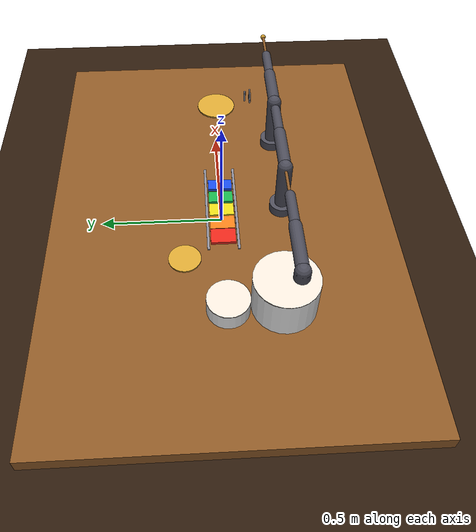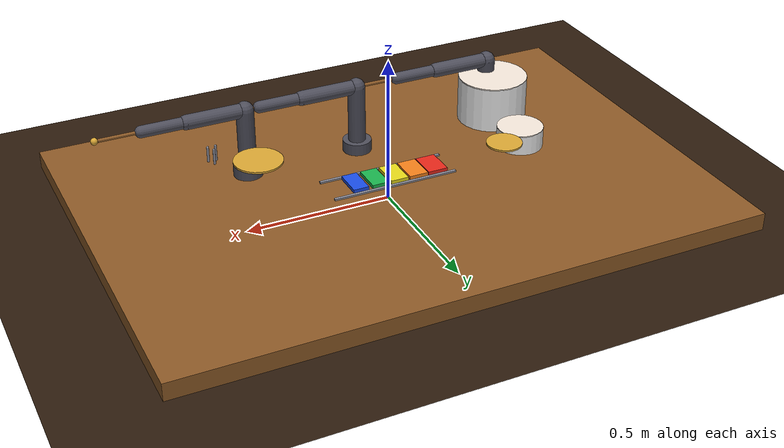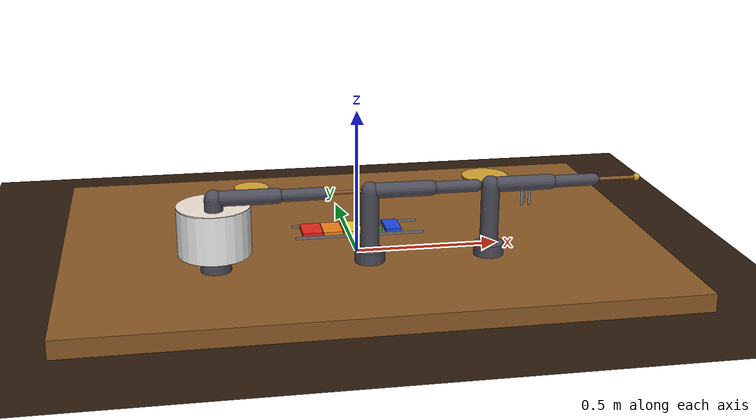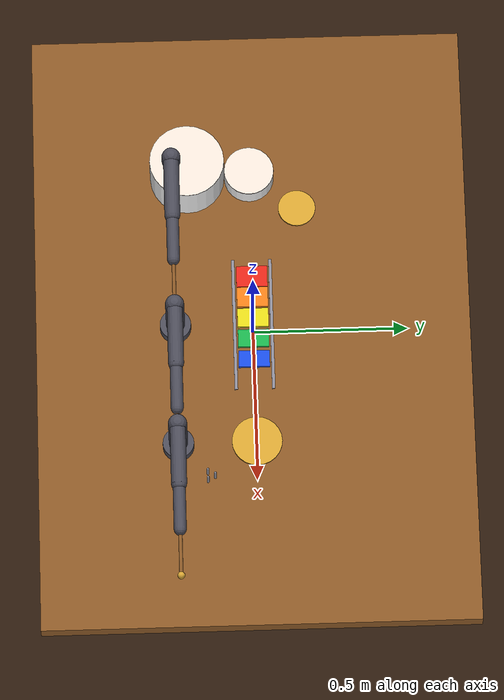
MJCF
<mujoco model="robot_orchestra_v2">
  <compiler angle="radian" autolimits="true"/>
  <option timestep="0.001" gravity="0 0 -9.81"/>
  <visual><global offwidth="1920" offheight="1088"/></visual>

  <default>
    <joint armature="0.01" damping="1.0"/>
    <geom condim="4" friction="0.5 0.005 0.0001"/>
  </default>

  <asset>
    <texture name="stage_tex" type="2d" builtin="checker" rgb1="0.2 0.12 0.06" rgb2="0.15 0.09 0.04" width="512" height="512"/>
    <material name="stage" texture="stage_tex" texrepeat="3 3" reflectance="0.15"/>
    <material name="metal" rgba="0.55 0.55 0.6 1" specular="0.5" shininess="0.5"/>
    <material name="brass" rgba="0.85 0.65 0.2 1" specular="0.7" shininess="0.7"/>
    <material name="wood" rgba="0.55 0.35 0.15 1"/>
    <material name="skin" rgba="0.95 0.9 0.85 1"/>
    <material name="red" rgba="0.9 0.15 0.1 1"/>
    <material name="orange" rgba="0.95 0.5 0.1 1"/>
    <material name="yellow" rgba="0.9 0.85 0.1 1"/>
    <material name="green" rgba="0.1 0.7 0.3 1"/>
    <material name="blue" rgba="0.1 0.3 0.9 1"/>
    <material name="white" rgba="0.95 0.95 0.95 1"/>
    <material name="arm_color" rgba="0.3 0.3 0.35 1" specular="0.4" shininess="0.4"/>
  </asset>

  <worldbody>
    <geom name="floor" type="plane" size="3 3 0.1" material="stage"/>
    <light directional="true" diffuse="0.9 0.85 0.8" pos="0 0 5" dir="0 0 -1"/>
    <light directional="true" diffuse="0.5 0.4 0.3" pos="2 2 4" dir="-1 -1 -1"/>

    <!-- 舞台 -->
    <body name="stage_body" pos="0 0 0.03">
      <geom type="box" size="1.0 0.7 0.03" material="wood" mass="50"/>
    </body>

    <!-- ===== 鼓组 (固定) ===== -->
    <body name="snare" pos="-0.5 0.0 0.12" mocap="true">
      <geom type="cylinder" size="0.08 0.035" material="white" mass="1.5"/>
      <geom type="cylinder" size="0.08 0.002" pos="0 0 0.035" material="skin" solref="0.001 1"/>
    </body>
    <body name="kick" pos="-0.5 -0.2 0.18" mocap="true">
      <geom type="cylinder" size="0.12 0.08" material="white" mass="2"/>
      <geom type="cylinder" size="0.12 0.002" pos="0 0 0.08" material="skin" solref="0.001 1"/>
    </body>
    <body name="hihat" pos="-0.35 0.15 0.2" mocap="true">
      <geom type="cylinder" size="0.06 0.003" material="brass" mass="0.3"/>
    </body>

    <!-- ===== 木琴 (固定) ===== -->
    <body name="xylo_base" pos="0.0 0.0 0.08" mocap="true">
      <geom type="box" size="0.22 0.005 0.003" pos="0 0.06 0" material="metal"/>
      <geom type="box" size="0.22 0.005 0.003" pos="0 -0.06 0" material="metal"/>
      <geom type="box" size="0.035 0.05 0.006" pos="-0.16 0 0.006" material="red" solref="0.001 1"/>
      <geom type="box" size="0.033 0.05 0.006" pos="-0.09 0 0.006" material="orange" solref="0.001 1"/>
      <geom type="box" size="0.031 0.05 0.006" pos="-0.02 0 0.006" material="yellow" solref="0.001 1"/>
      <geom type="box" size="0.029 0.05 0.006" pos="0.05 0 0.006" material="green" solref="0.001 1"/>
      <geom type="box" size="0.027 0.05 0.006" pos="0.12 0 0.006" material="blue" solref="0.001 1"/>
    </body>

    <!-- ===== 镲片+三角铁 (固定) ===== -->
    <body name="cymbal" pos="0.45 0.0 0.25" mocap="true">
      <geom type="cylinder" size="0.08 0.003" material="brass" mass="0.2"/>
    </body>
    <body name="triangle_inst" pos="0.55 -0.15 0.22" mocap="true">
      <geom type="capsule" size="0.004 0.025" pos="0 0.015 0" material="metal"/>
      <geom type="capsule" size="0.004 0.025" pos="0.013 -0.008 0" material="metal" euler="0 0 1.047"/>
      <geom type="capsule" size="0.004 0.025" pos="-0.013 -0.008 0" material="metal" euler="0 0 -1.047"/>
    </body>

    <!-- ===== 机械臂1: 鼓手 ===== -->
    <body name="d_base" pos="-0.5 -0.25 0.06">
      <geom type="cylinder" size="0.05 0.04" material="arm_color" mass="8"/>
      <body name="d_link1" pos="0 0 0.04">
        <joint name="d_j1" type="hinge" axis="0 0 1" range="-2 2" damping="15"/>
        <geom type="capsule" fromto="0 0 0 0 0 0.2" size="0.03" material="arm_color"/>
        <body name="d_link2" pos="0 0 0.2">
          <joint name="d_j2" type="hinge" axis="0 1 0" range="-1.5 0.5" damping="15"/>
          <geom type="capsule" fromto="0 0 0 0.2 0 0" size="0.025" material="arm_color"/>
          <body name="d_link3" pos="0.2 0 0">
            <joint name="d_j3" type="hinge" axis="0 1 0" range="-1.0 1.0" damping="10"/>
            <geom type="capsule" fromto="0 0 0 0.15 0 0" size="0.02" material="arm_color"/>
            <body name="d_stick" pos="0.15 0 0">
              <geom type="capsule" fromto="0 0 0 0.18 0 0" size="0.006" material="wood" mass="0.03"/>
              <site name="stick_tip" pos="0.18 0 0" size="0.008"/>
            </body>
          </body>
        </body>
      </body>
    </body>

    <!-- ===== 机械臂2: 木琴手 ===== -->
    <body name="x_base" pos="0.0 -0.25 0.06">
      <geom type="cylinder" size="0.05 0.04" material="arm_color" mass="8"/>
      <body name="x_link1" pos="0 0 0.04">
        <joint name="x_j1" type="hinge" axis="0 0 1" range="-2 2" damping="15"/>
        <geom type="capsule" fromto="0 0 0 0 0 0.2" size="0.03" material="arm_color"/>
        <body name="x_link2" pos="0 0 0.2">
          <joint name="x_j2" type="hinge" axis="0 1 0" range="-1.5 0.5" damping="15"/>
          <geom type="capsule" fromto="0 0 0 0.2 0 0" size="0.025" material="arm_color"/>
          <body name="x_link3" pos="0.2 0 0">
            <joint name="x_j3" type="hinge" axis="0 1 0" range="-1.0 1.0" damping="10"/>
            <geom type="capsule" fromto="0 0 0 0.15 0 0" size="0.02" material="arm_color"/>
            <body name="x_mallet" pos="0.15 0 0">
              <geom type="capsule" fromto="0 0 0 0.15 0 0" size="0.006" material="wood" mass="0.03"/>
              <geom type="sphere" size="0.015" pos="0.15 0 0" material="red" mass="0.01"/>
              <site name="mallet_tip" pos="0.15 0 0" size="0.015"/>
            </body>
          </body>
        </body>
      </body>
    </body>

    <!-- ===== 机械臂3: 打击乐手 ===== -->
    <body name="p_base" pos="0.4 -0.25 0.06">
      <geom type="cylinder" size="0.05 0.04" material="arm_color" mass="8"/>
      <body name="p_link1" pos="0 0 0.04">
        <joint name="p_j1" type="hinge" axis="0 0 1" range="-2 2" damping="15"/>
        <geom type="capsule" fromto="0 0 0 0 0 0.2" size="0.03" material="arm_color"/>
        <body name="p_link2" pos="0 0 0.2">
          <joint name="p_j2" type="hinge" axis="0 1 0" range="-1.5 0.5" damping="15"/>
          <geom type="capsule" fromto="0 0 0 0.2 0 0" size="0.025" material="arm_color"/>
          <body name="p_link3" pos="0.2 0 0">
            <joint name="p_j3" type="hinge" axis="0 1 0" range="-1.0 1.0" damping="10"/>
            <geom type="capsule" fromto="0 0 0 0.15 0 0" size="0.02" material="arm_color"/>
            <body name="p_beater" pos="0.15 0 0">
              <geom type="capsule" fromto="0 0 0 0.15 0 0" size="0.006" material="wood" mass="0.03"/>
              <geom type="sphere" size="0.012" pos="0.15 0 0" material="brass" mass="0.01"/>
              <site name="beater_tip" pos="0.15 0 0" size="0.012"/>
            </body>
          </body>
        </body>
      </body>
    </body>

    <!-- 相机 -->
    <camera name="overview" pos="0 -1.8 1.0" xyaxes="1 0 0 0 0.5 0.85" fovy="55"/>
    <camera name="drummer_cam" pos="-0.6 -1.0 0.7" xyaxes="0.8 -0.6 0 -0.3 -0.4 0.9" fovy="45"/>
    <camera name="xylo_cam" pos="0 -1.0 0.7" xyaxes="1 0 0 0 0.3 0.95" fovy="40"/>
    <camera name="perc_cam" pos="0.6 -1.0 0.7" xyaxes="-0.8 -0.6 0 0.3 -0.4 0.9" fovy="45"/>
  </worldbody>

  <actuator>
    <motor name="d_a1" joint="d_j1" ctrlrange="-50 50"/>
    <motor name="d_a2" joint="d_j2" ctrlrange="-50 50"/>
    <motor name="d_a3" joint="d_j3" ctrlrange="-50 50"/>
    <motor name="x_a1" joint="x_j1" ctrlrange="-50 50"/>
    <motor name="x_a2" joint="x_j2" ctrlrange="-50 50"/>
    <motor name="x_a3" joint="x_j3" ctrlrange="-50 50"/>
    <motor name="p_a1" joint="p_j1" ctrlrange="-50 50"/>
    <motor name="p_a2" joint="p_j2" ctrlrange="-50 50"/>
    <motor name="p_a3" joint="p_j3" ctrlrange="-50 50"/>
  </actuator>

  <sensor>
    <touch name="drum_hit" site="stick_tip"/>
    <touch name="xylo_hit" site="mallet_tip"/>
    <touch name="perc_hit" site="beater_tip"/>
  </sensor>
</mujoco>
